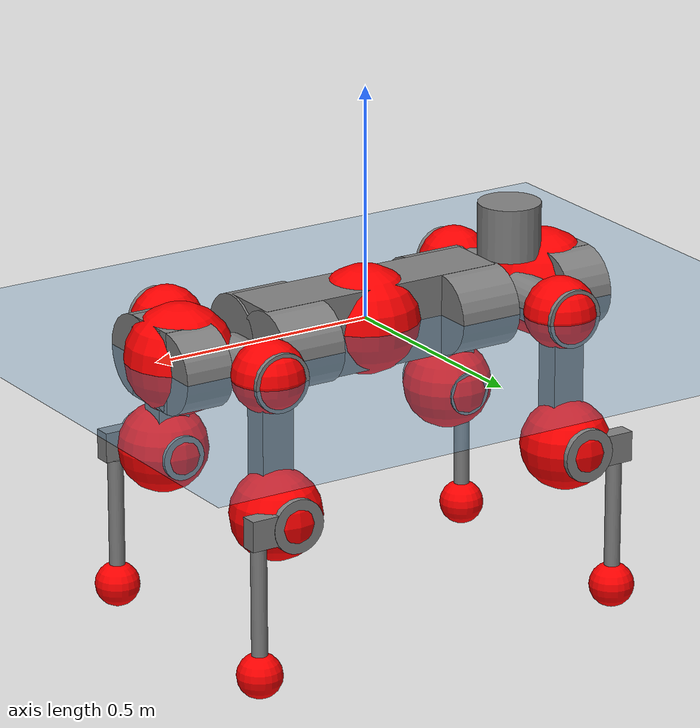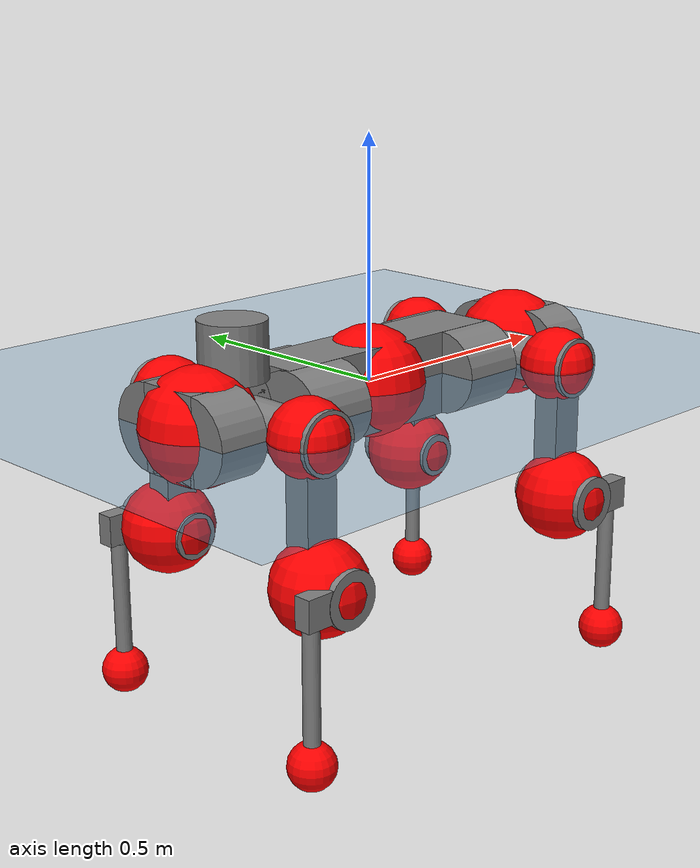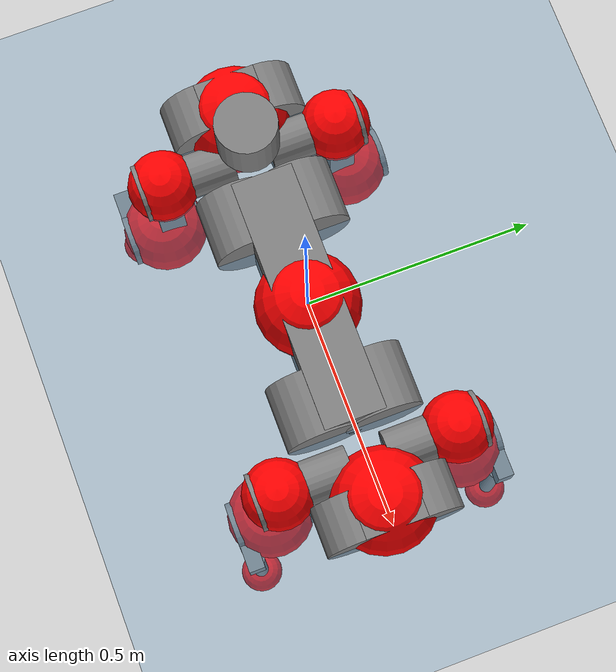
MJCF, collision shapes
<mujoco model="anymal_c">
  <compiler angle="radian" assetdir="assets" balanceinertia="true" inertiafromgeom="false"/>

  <option timestep="0.005" density="1.2" viscosity="2e-05"/>

  <size nkey="1"/>

  <visual>
    <quality shadowsize="8192"/>
    <map shadowclip="0.5"/>
  </visual>

  <default>
    <default class="/">
      <material specular="0" shininess="0.25"/>
      <geom contype="0" conaffinity="0" group="1" solref="-1000 -80"/>
      <site size="0.01 0.005 0.005" group="5"/>
      <general forcelimited="true" forcerange="-80 80" biastype="affine" gainprm="80" biasprm="0 -80 -2"/>
      <default class="anymal_c">
        <joint armature="0.01" damping="0.01" frictionloss="0.1"/>
        <default class="visual">
          <geom type="mesh" group="2"/>
          <default class="visual_zflip"/>
        </default>
        <default class="collision">
          <geom type="cylinder" group="3"/>
          <default class="foot">
            <geom size="0.03 0 0" type="sphere" condim="6" priority="1" friction="0.8 0.02 0.01" solimp="0.015 1 0.03"/>
          </default>
        </default>
      </default>
      <default class="reward_collision_sphere">
        <geom group="5" rgba="1 0 0 1"/>
      </default>
    </default>
  </default>

  <asset>
    <texture type="skybox" colorspace="auto" name="//unnamed_texture_0" builtin="gradient" rgb1="0.95 0.95 0.95" rgb2="0.95 0.95 0.95" width="100" height="600"/>
    <texture type="2d" colorspace="auto" name="texplane" builtin="checker" rgb1="0.345 0.575 0.748" rgb2="0.345 0.575 0.748" markrgb="1 1 1" width="512" height="512"/>
    <texture type="2d" colorspace="linear" name="base" file="base.png"/>
    <texture type="2d" colorspace="linear" name="top_shell" file="top_shell.png"/>
    <texture type="2d" colorspace="linear" name="bottom_shell" file="bottom_shell.png"/>
    <texture type="2d" colorspace="linear" name="remote" file="remote.png"/>
    <texture type="2d" colorspace="linear" name="hatch" file="hatch.png"/>
    <texture type="2d" colorspace="linear" name="handle" file="handle.png"/>
    <texture type="2d" colorspace="linear" name="face" file="face.png"/>
    <texture type="2d" colorspace="linear" name="battery" file="battery.png"/>
    <texture type="2d" colorspace="linear" name="lidar_cage" file="lidar_cage.png"/>
    <texture type="2d" colorspace="linear" name="depth_camera" file="depth_camera.png"/>
    <texture type="2d" colorspace="linear" name="wide_angle_camera" file="wide_angle_camera.png"/>
    <texture type="2d" colorspace="linear" name="lidar" file="lidar.png"/>
    <texture type="2d" colorspace="linear" name="drive" file="drive.png"/>
    <texture type="2d" colorspace="linear" name="hip_l" file="hip_l.png"/>
    <texture type="2d" colorspace="linear" name="shank_l" file="shank_l.png"/>
    <texture type="2d" colorspace="linear" name="foot" file="foot.png"/>
    <texture type="2d" colorspace="linear" name="thigh" file="thigh.png"/>
    <texture type="2d" colorspace="linear" name="shank_r" file="shank_r.png"/>
    <texture type="2d" colorspace="linear" name="hip_r" file="hip_r.png"/>
    <material name="MatPlane" class="/" texture="texplane" texuniform="true" texrepeat="2 2" specular="0.9" shininess="0.5"/>
    <material name="black_plastic" class="/" rgba="0.007 0.007 0.007 1"/>
    <material name="green" class="/" rgba="0.052 0.178 0.033 1"/>
    <material name="red" class="/" rgba="0.178 0.006 0.005 1"/>
    <material name="yellow" class="/" rgba="0.178 0.119 0.006 1"/>
    <material name="lwl" class="/" rgba="0.8 0.8 0.8 1"/>
    <material name="base" class="/" texture="base"/>
    <material name="top_shell" class="/" texture="top_shell"/>
    <material name="bottom_shell" class="/" texture="bottom_shell"/>
    <material name="hip_l" class="/" texture="hip_l"/>
    <material name="thigh" class="/" texture="thigh"/>
    <material name="shank_l" class="/" texture="shank_l"/>
    <material name="foot" class="/" texture="foot"/>
    <material name="hip_r" class="/" texture="hip_r"/>
    <material name="shank" class="/" texture="shank_r"/>
    <material name="hatch" class="/" texture="hatch"/>
    <material name="remote" class="/" texture="remote"/>
    <material name="handle" class="/" texture="handle"/>
    <material name="face" class="/" texture="face"/>
    <material name="depth_camera" class="/" texture="depth_camera"/>
    <material name="wide_angle_camera" class="/" texture="wide_angle_camera"/>
    <material name="battery" class="/" texture="battery"/>
    <material name="lidar_cage" class="/" texture="lidar_cage"/>
    <material name="lidar" class="/" texture="lidar"/>
    <material name="drive" class="/" texture="drive"/>
    <mesh name="base_0" class="/" file="base_0.obj"/>
    <mesh name="base_1" class="/" file="base_1.obj"/>
    <mesh name="base_2" class="/" file="base_2.obj"/>
    <mesh name="base_3" class="/" file="base_3.obj"/>
    <mesh name="base_4" class="/" file="base_4.obj"/>
    <mesh name="base_5" class="/" file="base_5.obj"/>
    <mesh name="top_shell" class="/" file="top_shell.obj"/>
    <mesh name="bottom_shell" class="/" file="bottom_shell.obj"/>
    <mesh name="remote" class="/" file="remote.obj"/>
    <mesh name="handle" class="/" file="handle.obj"/>
    <mesh name="face" class="/" file="face.obj"/>
    <mesh name="wide_angle_camera" class="/" file="wide_angle_camera.obj"/>
    <mesh name="depth_camera" class="/" file="depth_camera.obj"/>
    <mesh name="battery" class="/" file="battery.obj"/>
    <mesh name="lidar_cage" class="/" file="lidar_cage.obj"/>
    <mesh name="lidar" class="/" file="lidar.obj"/>
    <mesh name="drive" class="/" file="drive.obj"/>
    <mesh name="hip_l" class="/" file="hip_l.obj"/>
    <mesh name="thigh" class="/" file="thigh.obj"/>
    <mesh name="shank_l" class="/" file="shank_l.obj"/>
    <mesh name="foot" class="/" file="foot.obj"/>
    <mesh name="hip_r" class="/" file="hip_r.obj"/>
    <mesh name="hatch" class="/" file="hatch.obj"/>
    <mesh name="shank_r" class="/" file="shank_r.obj"/>
  </asset>

  <worldbody>
    <geom name="floor" class="/" size="100 100 0.125" type="plane" group="0" material="MatPlane"/>
    <light name="toplight_shadow" class="/" pos="0 0 5" dir="0.0990148 0.0990148 -0.990148" type="directional" ambient="0.04 0.04 0.04" diffuse="0.55 0.55 0.55" specular="0.12 0.12 0.12"/>
    <light name="toplight_fill" class="/" pos="0 0 5" dir="0.0990148 0.0990148 -0.990148" type="directional" castshadow="false" ambient="0.04 0.04 0.04" diffuse="0.3 0.3 0.3" specular="0.08 0.08 0.08"/>
    <body name="trunk" childclass="anymal_c" pos="0.00054382 -0.000171974 -0.000601283" quat="1 -0.000104736 7.67085e-05 0.000180699">
      <inertial pos="0.00103982 -0.0020195 0.0479162" quat="0.496303 0.500001 0.500766 0.502908" mass="16.8325" diaginertia="0.599472 0.400731 0.213018"/>
      <joint name="//unnamed_joint_0" type="free" armature="0" damping="0" frictionloss="0"/>
      <geom name="//unnamed_geom_1" class="visual" material="green" mesh="base_0"/>
      <geom name="//unnamed_geom_2" class="visual" material="yellow" mesh="base_1"/>
      <geom name="//unnamed_geom_3" class="visual" material="red" mesh="base_2"/>
      <geom name="//unnamed_geom_4" class="visual" material="black_plastic" mesh="base_3"/>
      <geom name="//unnamed_geom_5" class="visual" material="lwl" mesh="base_4"/>
      <geom name="//unnamed_geom_6" class="visual" material="base" mesh="base_5"/>
      <geom name="trunk_1" class="collision" size="0.280063 0.0676015 0.0869162" type="box"/>
      <geom name="trunk_2" class="collision" size="0.0869162 0.0700158" pos="0.215032 0.0640033 0" quat="0.707107 0 0.707107 0"/>
      <geom name="trunk_3" class="collision" size="0.0869162 0.0700158" pos="-0.215032 0.0640033 0" quat="0.707107 0 0.707107 0"/>
      <geom name="trunk_4" class="collision" size="0.0869162 0.0700158" pos="0.215032 -0.0640033 0" quat="0.707107 0 0.707107 0"/>
      <geom name="trunk_5" class="collision" size="0.0869162 0.0700158" pos="-0.215032 -0.0640033 0" quat="0.707107 0 0.707107 0"/>
      <geom name="//unnamed_geom_12" class="visual" material="top_shell" mesh="top_shell"/>
      <geom name="//unnamed_geom_13" class="visual" material="bottom_shell" mesh="bottom_shell"/>
      <geom name="//unnamed_geom_14" class="visual" material="remote" mesh="remote"/>
      <geom name="//unnamed_geom_15" class="visual" material="handle" mesh="handle"/>
      <geom name="//unnamed_geom_16" class="visual" pos="0.409796 0 0" quat="1 0 0 0" material="face" mesh="face"/>
      <geom name="trunk_6" class="collision" size="0.0531155 0.0676015 0.0869162" pos="0.464172 0 0" type="box"/>
      <geom name="//unnamed_geom_18" class="collision" size="0.0869162 0.0531155" pos="0.464172 0.0640033 0" quat="0.707107 0 0.707107 0"/>
      <geom name="//unnamed_geom_19" class="collision" size="0.0869162 0.0531155" pos="0.464172 -0.0640033 0" quat="0.707107 0 0.707107 0"/>
      <geom name="//unnamed_geom_20" class="visual" pos="0.456412 0 -0.0290736" quat="0.965926 0 0.258819 0" material="depth_camera" mesh="depth_camera"/>
      <geom name="//unnamed_geom_21" class="visual" pos="0.507179 0 0.0148835" material="wide_angle_camera" mesh="wide_angle_camera"/>
      <geom name="//unnamed_geom_22" class="visual_zflip" pos="-0.409796 0 0" quat="0 0 0 1" material="face" mesh="face"/>
      <geom name="trunk_7" class="collision" size="0.0531155 0.0676015 0.0869162" pos="-0.464172 0 0" quat="0 0 0 1" type="box"/>
      <geom name="//unnamed_geom_24" class="collision" size="0.0869162 0.0531155" pos="-0.464172 -0.0640033 0" quat="0 -0.707107 0 0.707107"/>
      <geom name="//unnamed_geom_25" class="collision" size="0.0869162 0.0531155" pos="-0.464172 0.0640033 0" quat="0 -0.707107 0 0.707107"/>
      <geom name="//unnamed_geom_26" class="visual" pos="-0.456412 0 -0.0290736" quat="0 -0.258819 0 0.965926" material="depth_camera" mesh="depth_camera"/>
      <geom name="//unnamed_geom_27" class="visual_zflip" pos="-0.507179 0 0.0148835" quat="0 0 0 1" material="wide_angle_camera" mesh="wide_angle_camera"/>
      <geom name="//unnamed_geom_28" class="visual" material="battery" mesh="battery"/>
      <geom name="//unnamed_geom_29" class="visual" pos="0 0.0689349 0.0288398" quat="0.683013 -0.183013 0.183013 0.683013" material="depth_camera" mesh="depth_camera"/>
      <geom name="//unnamed_geom_30" class="visual" pos="0 -0.0689349 0.0288398" quat="0.683013 0.183013 0.183013 -0.683013" material="depth_camera" mesh="depth_camera"/>
      <geom name="//unnamed_geom_31" class="visual" pos="-0.359869 0 0.0730753" quat="1 0 0 0" material="lidar_cage" mesh="lidar_cage"/>
      <geom name="trunk_8" class="collision" size="0.0676015 0.0579441" pos="-0.359869 0 0.132729"/>
      <geom name="//unnamed_geom_33" class="visual" pos="-0.359869 -2.91982e-05 0.141378" quat="0.707107 0 0 -0.707107" material="lidar" mesh="lidar"/>
      <geom name="//unnamed_geom_34" class="visual" pos="0.296497 0.095119 -1.3781e-09" quat="0.258819 0.965926 0 0" material="drive" mesh="drive"/>
      <geom name="//unnamed_geom_35" class="visual" pos="0.296497 -0.095119 1.3781e-09" quat="0.258819 -0.965926 0 0" material="drive" mesh="drive"/>
      <geom name="//unnamed_geom_36" class="visual" pos="-0.296497 0.095119 1.3781e-09" quat="0 0 0.965926 -0.258819" material="drive" mesh="drive"/>
      <geom name="//unnamed_geom_37" class="visual" pos="-0.296497 -0.095119 -1.3781e-09" quat="0 0 -0.965926 -0.258819" material="drive" mesh="drive"/>
      <geom name="//unnamed_geom_38" class="visual" pos="0.114684 0 0.0725782" quat="1 0 0 0" material="hatch" mesh="hatch"/>
      <geom name="//unnamed_geom_39" class="reward_collision_sphere" size="0.115888"/>
      <geom name="//unnamed_geom_40" class="reward_collision_sphere" size="0.115888" pos="0.444894 0 0"/>
      <geom name="//unnamed_geom_41" class="reward_collision_sphere" size="0.115888" pos="-0.444894 0 0"/>
      <site name="imu" pos="0.234041 0.00657674 0.0550623" size="0.00965736"/>
      <camera name="track" pos="0 -1.82867 0" quat="0.707107 0.707107 0 0" mode="trackcom"/>
      <camera name="ego_camera" pos="0.444894 0 -0.0397689" quat="-0.5 -0.5 0.5 0.5"/>
      <body name="LF_HIP" pos="0.296938 0.0958257 0.00105517" quat="0.258728 0.96595 3.85334e-05 -0.000363214">
        <inertial pos="0.057968 -0.0131123 -0.00872082" quat="-0.127991 0.709723 -0.135511 0.679373" mass="2.43401" diaginertia="0.00536893 0.00314618 0.0031456"/>
        <joint name="LF_HAA" pos="0 0 0" axis="0.999967 0.00183257 0.00786584" range="-0.729859 0.481194" armature="0.0107482" damping="0" frictionloss="0.097763"/>
        <geom name="//unnamed_geom_42" class="visual" pos="0 -8.10672e-05 1.33152e-05" quat="0.258819 -0.965926 0 0" material="hip_l" mesh="hip_l"/>
        <geom name="//unnamed_geom_43" class="visual" pos="0.0592203 -0.0708078 -0.0414718" quat="0.183013 -0.683013 0.683013 0.183013" material="drive" mesh="drive"/>
        <geom name="//unnamed_geom_44" class="collision" size="0.0482868 0.0676015" pos="0.0592203 -0.0109352 -0.0068651" quat="-0.353553 -0.612372 0.612372 -0.353553"/>
        <body name="LF_THIGH" pos="0.0596616 -0.0653667 -0.041373" quat="0.183403 -0.6828 0.68302 0.183389">
          <inertial pos="0.0298721 0.000165892 -0.242261" quat="0.993121 -0.00227413 -0.0784578 0.0868896" mass="2.7822" diaginertia="0.0280093 0.0192162 0.00409606"/>
          <joint name="LF_HFE" pos="0 0 0" axis="0.999926 0.0118167 0.00274398" range="-3.12492 3.13212" armature="0.00963458" damping="0.0148713" frictionloss="0.0879082"/>
          <geom name="//unnamed_geom_45" class="visual" pos="0.00147867 2.33003e-06 0" quat="0.707107 0 0 -0.707107" material="thigh" mesh="thigh"/>
          <geom name="//unnamed_geom_46" class="collision" size="0.0627728 0.0386294" pos="0.0395461 0 0" quat="0.5 0.5 -0.5 -0.5"/>
          <geom name="//unnamed_geom_47" class="collision" size="0.0362151 0.0289721 0.136472" pos="0.0296596 0 -0.140497" quat="0.707107 0 0 -0.707107" type="box"/>
          <geom name="//unnamed_geom_48" class="visual" pos="0.0991618 0 -0.283353" quat="1 0 0 0" material="drive" mesh="drive"/>
          <geom name="//unnamed_geom_49" class="collision" size="0.0482868 0.0676015" pos="0.0299562 0 -0.283353" quat="0.707107 0 0.707107 0"/>
          <geom name="//unnamed_geom_50" class="reward_collision_sphere" size="0.0772589" pos="0.0247163 0 0"/>
          <body name="LF_SHANK" pos="0.100566 -0.00188905 -0.285793" quat="1 0.000602895 8.77732e-05 -0.000413435">
            <inertial pos="0.00591729 -0.0560066 -0.0795763" quat="0.992558 -0.118658 0.00126666 -0.0273259" mass="0.530782" diaginertia="0.00964308 0.00587921 0.0010993"/>
            <joint name="LF_KFE" pos="0 0 0" axis="0.999999 -0.000609585 -0.0012527" range="-3.14969 3.11966" armature="0.00941555" damping="0" frictionloss="0.0974611"/>
            <geom name="//unnamed_geom_51" class="visual" pos="0.000482161 0.00257091 0" quat="0.707107 0 0 -0.707107" material="shank_l" mesh="shank_l"/>
            <geom name="LF_kfe_act" class="collision" size="0.0579441 0.0193147" pos="0.019773 0 0" quat="0.5 0.5 -0.5 -0.5"/>
            <geom name="//unnamed_geom_53" class="collision" size="0.0555288 0.0325936 0.018349" pos="0.019773 -0.0525732 0" quat="0.5 0.5 -0.5 -0.5" type="box"/>
            <geom name="//unnamed_geom_54" class="visual" pos="0.0129018 -0.0795871 -0.336017" quat="0.382683 0 0 -0.92388" material="foot" mesh="foot"/>
            <geom name="LF_calf" class="collision" size="0.0169004 0.136412" pos="0.0129019 -0.0804156 -0.168009" quat="0.707107 0 0 -0.707107"/>
            <geom name="LF_foot" class="foot" size="0.0322044" pos="0.0129019 -0.0804156 -0.313647" quat="0.707107 0 0 -0.707107"/>
            <geom name="//unnamed_geom_57" class="reward_collision_sphere" size="0.0965736" pos="-0.0494326 0 0"/>
            <geom name="//unnamed_geom_58" class="reward_collision_sphere" size="0.0482868" pos="0.0129019 -0.0804156 -0.313647"/>
            <site name="LF_foot" class="foot" pos="0.0129019 -0.0804156 -0.313647" quat="0.707107 0 0 -0.707107" size="0.00965736"/>
          </body>
        </body>
      </body>
      <body name="RF_HIP" pos="0.297 -0.0948156 0.00119693" quat="0.258819 -0.965926 -2.75872e-07 1.41895e-05">
        <inertial pos="0.0579025 0.0137902 -0.00775916" quat="0.135523 0.680224 0.127588 0.708978" mass="2.5325" diaginertia="0.00559897 0.00314022 0.00319476"/>
        <joint name="RF_HAA" pos="0 0 0" axis="0.999994 0.00276501 -0.00194211" range="-0.532826 0.72249" armature="0.00882471" damping="0.0107855" frictionloss="0.0875833"/>
        <geom name="//unnamed_geom_59" class="visual" pos="0 8.10666e-05 1.33152e-05" quat="0.258819 0.965926 0 0" material="hip_r" mesh="hip_r"/>
        <geom name="//unnamed_geom_60" class="visual" pos="0.0592203 0.0708078 -0.0414718" quat="0.183013 0.683013 0.683013 -0.183013" material="drive" mesh="drive"/>
        <geom name="//unnamed_geom_61" class="collision" size="0.0482868 0.0676015" pos="0.0592203 0.0109352 -0.0068651" quat="-0.353553 0.612372 0.612372 0.353553"/>
        <body name="RF_THIGH" pos="0.0604376 0.0684843 -0.0415423" quat="0.182916 0.683008 0.683044 -0.183011">
          <inertial pos="0.0306395 -4.38786e-05 -0.244562" quat="0.992326 0.00184524 -0.0853027 0.0894965" mass="2.65432" diaginertia="0.0283706 0.0188891 0.00397289"/>
          <joint name="RF_HFE" pos="0 0 0" axis="0.999993 0.00259263 0.00265409" stiffness="0.00523623" range="-3.09523 3.14826" armature="0.00981384" damping="0.00172667" frictionloss="0.108685"/>
          <geom name="//unnamed_geom_62" class="visual" pos="0.00147867 2.33003e-06 0" quat="0.707107 0 0 -0.707107" material="thigh" mesh="thigh"/>
          <geom name="//unnamed_geom_63" class="collision" size="0.0627728 0.0386294" pos="0.0395461 0 0" quat="0.5 0.5 0.5 0.5"/>
          <geom name="//unnamed_geom_64" class="collision" size="0.0362151 0.0289721 0.136472" pos="0.0296596 0 -0.140497" quat="0.707107 0 0 0.707107" type="box"/>
          <geom name="//unnamed_geom_65" class="visual" pos="0.0991618 0 -0.283353" quat="1 0 0 0" material="drive" mesh="drive"/>
          <geom name="//unnamed_geom_66" class="collision" size="0.0482868 0.0676015" pos="0.0299562 0 -0.283353" quat="0.707107 0 0.707107 0"/>
          <geom name="//unnamed_geom_67" class="reward_collision_sphere" size="0.0772589" pos="0.0247163 0 0"/>
          <body name="RF_SHANK" pos="0.10037 -0.00174273 -0.284349" quat="1 0.000131631 0.000148234 9.61763e-05">
            <inertial pos="0.00582303 0.0556596 -0.0778419" quat="0.992991 0.115405 -0.000569525 0.0255052" mass="0.529835" diaginertia="0.00932565 0.00581114 0.00109351"/>
            <joint name="RF_KFE" pos="0 0 0" axis="0.999999 -0.000828336 0.00142008" range="-3.12814 3.13879" armature="0.010154" damping="0.0103218" frictionloss="0.085628"/>
            <geom name="//unnamed_geom_68" class="visual" pos="0.000482158 -0.0025709 0" quat="0.707107 0 0 0.707107" material="shank" mesh="shank_r"/>
            <geom name="RF_kfe_act" class="collision" size="0.0579441 0.0193147" pos="0.019773 0 0" quat="0.5 0.5 0.5 0.5"/>
            <geom name="//unnamed_geom_70" class="collision" size="0.0555288 0.0325936 0.018349" pos="0.019773 0.0525732 0" quat="0.5 0.5 0.5 0.5" type="box"/>
            <geom name="//unnamed_geom_71" class="visual" pos="0.012902 0.0795871 -0.336017" quat="0.382683 0 0 0.92388" material="foot" mesh="foot"/>
            <geom name="RF_calf" class="collision" size="0.0169004 0.136412" pos="0.0129019 0.0804156 -0.168009" quat="0.707107 0 0 0.707107"/>
            <geom name="RF_foot" class="foot" size="0.0270536" pos="0.0129019 0.0804156 -0.313647" quat="0.707107 0 0 0.707107"/>
            <geom name="//unnamed_geom_74" class="reward_collision_sphere" size="0.0965736" pos="-0.0494326 0 0"/>
            <geom name="//unnamed_geom_75" class="reward_collision_sphere" size="0.0482868" pos="0.0129019 0.0804156 -0.313647"/>
            <site name="RF_foot" class="foot" pos="0.0129019 0.0804156 -0.313647" quat="0.707107 0 0 0.707107" size="0.00965736"/>
          </body>
        </body>
      </body>
      <body name="LH_HIP" pos="-0.29817 0.0950869 -2.12334e-05" quat="-6.28827e-05 0.00026707 0.965896 -0.258929">
        <inertial pos="0.0553773 0.0156981 -0.00789505" quat="0.135381 0.679182 0.12793 0.709942" mass="2.48292" diaginertia="0.0054921 0.00316896 0.00306105"/>
        <joint name="LH_HAA" pos="0 0 0" axis="0.999992 0.00339861 -0.00201824" stiffness="0.00276318" range="-0.513996 0.673315" armature="0.00863492" damping="0.0124464" frictionloss="0.095525"/>
        <geom name="//unnamed_geom_76" class="visual" pos="0 8.10666e-05 1.33152e-05" quat="-0.258819 -0.965926 0 0" material="hip_r" mesh="hip_r"/>
        <geom name="//unnamed_geom_77" class="visual" pos="0.0592203 0.0708078 -0.0414718" quat="0.183013 0.683013 0.683013 -0.183013" material="drive" mesh="drive"/>
        <geom name="//unnamed_geom_78" class="collision" size="0.0482868 0.0676015" pos="0.0592203 0.0109352 -0.0068651" quat="-0.353553 0.612372 0.612372 0.353553"/>
        <body name="LH_THIGH" pos="0.0579825 0.0641681 -0.0409222" quat="0.182911 0.683005 0.683064 -0.182953">
          <inertial pos="0.0305513 0.00120582 -0.244119" quat="0.992931 -0.00604399 -0.0813832 0.086182" mass="2.76072" diaginertia="0.0286217 0.0190927 0.00401369"/>
          <joint name="LH_HFE" pos="0 0 0" axis="0.999963 0.00528245 0.00673214" range="-3.14256 3.13035" armature="0.00991496" damping="0.0124147" frictionloss="0.0916093"/>
          <geom name="//unnamed_geom_79" class="visual" pos="0.00147867 2.33003e-06 0" quat="0.707107 0 0 -0.707107" material="thigh" mesh="thigh"/>
          <geom name="//unnamed_geom_80" class="collision" size="0.0627728 0.0386294" pos="0.0395461 0 0" quat="0.5 0.5 -0.5 -0.5"/>
          <geom name="//unnamed_geom_81" class="collision" size="0.0362151 0.0289721 0.136472" pos="0.0296596 0 -0.140497" quat="0.707107 0 0 -0.707107" type="box"/>
          <geom name="//unnamed_geom_82" class="visual" pos="0.0991618 0 -0.283353" quat="1 0 0 0" material="drive" mesh="drive"/>
          <geom name="//unnamed_geom_83" class="collision" size="0.0482868 0.0676015" pos="0.0299562 0 -0.283353" quat="0.707107 0 0.707107 0"/>
          <geom name="//unnamed_geom_84" class="reward_collision_sphere" size="0.0772589" pos="0.0247163 0 0"/>
          <body name="LH_SHANK" pos="0.0991839 -3.19003e-05 -0.283078" quat="1 -8.20307e-05 0.000204023 -0.00023828">
            <inertial pos="0.00545318 0.0558823 -0.0799372" quat="0.991557 0.12762 -0.00396311 0.0226262" mass="0.529965" diaginertia="0.00964858 0.00592397 0.00105348"/>
            <joint name="LH_KFE" pos="0 0 0" axis="0.999949 -0.00964624 -0.00298671" range="-3.13541 3.14237" armature="0.00917153" damping="0.00993291" frictionloss="0.0981627"/>
            <geom name="//unnamed_geom_85" class="visual" pos="0.000482158 -0.0025709 0" quat="-0.707107 0 0 -0.707107" material="shank" mesh="shank_r"/>
            <geom name="LH_kfe_act" class="collision" size="0.0579441 0.0193147" pos="0.019773 0 0" quat="0.5 0.5 -0.5 -0.5"/>
            <geom name="//unnamed_geom_87" class="collision" size="0.0555288 0.0325936 0.018349" pos="0.019773 0.0525732 0" quat="0.5 0.5 -0.5 -0.5" type="box"/>
            <geom name="//unnamed_geom_88" class="visual" pos="0.012902 0.0795871 -0.336017" quat="-0.382683 0 0 -0.92388" material="foot" mesh="foot"/>
            <geom name="LH_calf" class="collision" size="0.0169004 0.136412" pos="0.0129019 0.0804156 -0.168009" quat="0.707107 0 0 -0.707107"/>
            <geom name="LH_foot" class="foot" size="0.0341662" pos="0.0129019 0.0804156 -0.313647" quat="0.707107 0 0 -0.707107"/>
            <geom name="//unnamed_geom_91" class="reward_collision_sphere" size="0.0965736" pos="-0.0494326 0 0"/>
            <geom name="//unnamed_geom_92" class="reward_collision_sphere" size="0.0482868" pos="0.0129019 0.0804156 -0.313647"/>
            <site name="LH_foot" class="foot" pos="0.0129019 0.0804156 -0.313647" quat="0.707107 0 0 -0.707107" size="0.00965736"/>
          </body>
        </body>
      </body>
      <body name="RH_HIP" pos="-0.296436 -0.0977726 0.00102557" quat="0.000595309 -0.000105484 -0.965866 -0.25904">
        <inertial pos="0.0539498 -0.0137543 -0.0068267" quat="-0.130484 0.707265 -0.137356 0.68109" mass="2.52523" diaginertia="0.00556055 0.00316012 0.00312727"/>
        <joint name="RH_HAA" pos="0 0 0" axis="1 0.00019594 7.96058e-05" range="-0.75543 0.540317" armature="0.00946347" damping="0.00732097" frictionloss="0.0971639"/>
        <geom name="//unnamed_geom_93" class="visual" pos="0 -8.10672e-05 1.33152e-05" quat="-0.258819 0.965926 0 0" material="hip_l" mesh="hip_l"/>
        <geom name="//unnamed_geom_94" class="visual" pos="0.0592203 -0.0708078 -0.0414718" quat="-0.183013 0.683013 -0.683013 -0.183013" material="drive" mesh="drive"/>
        <geom name="//unnamed_geom_95" class="collision" size="0.0482868 0.0676015" pos="0.0592203 -0.0109352 -0.0068651" quat="0.353553 0.612372 -0.612372 0.353553"/>
        <body name="RH_THIGH" pos="0.0596899 -0.0661205 -0.0404743" quat="-0.182939 0.6831 -0.682936 -0.183046">
          <inertial pos="0.0314915 0.0006869 -0.24415" quat="0.993148 -0.00568889 -0.08075 0.0842907" mass="2.6031" diaginertia="0.0271301 0.0185381 0.00391289"/>
          <joint name="RH_HFE" pos="0 0 0" axis="0.999987 -0.00279569 -0.00421004" range="-3.13139 3.1437" armature="0.010118" damping="0.0127872" frictionloss="0.0965717"/>
          <geom name="//unnamed_geom_96" class="visual" pos="0.00147867 2.33003e-06 0" quat="0.707107 0 0 -0.707107" material="thigh" mesh="thigh"/>
          <geom name="//unnamed_geom_97" class="collision" size="0.0627728 0.0386294" pos="0.0395461 0 0" quat="0.5 0.5 0.5 0.5"/>
          <geom name="//unnamed_geom_98" class="collision" size="0.0362151 0.0289721 0.136472" pos="0.0296596 0 -0.140497" quat="0.707107 0 0 0.707107" type="box"/>
          <geom name="//unnamed_geom_99" class="visual" pos="0.0991618 0 -0.283353" quat="1 0 0 0" material="drive" mesh="drive"/>
          <geom name="//unnamed_geom_100" class="collision" size="0.0482868 0.0676015" pos="0.0299562 0 -0.283353" quat="0.707107 0 0.707107 0"/>
          <geom name="//unnamed_geom_101" class="reward_collision_sphere" size="0.0772589" pos="0.0247163 0 0"/>
          <body name="RH_SHANK" pos="0.0972588 0.000977945 -0.284126" quat="1 2.33491e-05 0.000264672 -0.00023102">
            <inertial pos="0.00648755 -0.0559748 -0.0797943" quat="0.992832 -0.114924 -0.00384642 -0.032595" mass="0.536238" diaginertia="0.00969514 0.00605124 0.00109717"/>
            <joint name="RH_KFE" pos="0 0 0" axis="0.999999 -0.00110697 0.000363519" range="-3.13386 3.15627" armature="0.0085594" damping="0.00256045" frictionloss="0.0961587"/>
            <geom name="//unnamed_geom_102" class="visual" pos="0.000482161 0.00257091 0" quat="0.707107 0 0 -0.707107" material="shank_l" mesh="shank_l"/>
            <geom name="RH_kfe_act" class="collision" size="0.0579441 0.0193147" pos="0.019773 0 0" quat="0.5 0.5 0.5 0.5"/>
            <geom name="//unnamed_geom_104" class="collision" size="0.0555288 0.0325936 0.018349" pos="0.019773 -0.0525732 0" quat="0.5 0.5 0.5 0.5" type="box"/>
            <geom name="//unnamed_geom_105" class="visual" pos="0.0129018 -0.0795871 -0.336017" quat="0.382683 0 0 -0.92388" material="foot" mesh="foot"/>
            <geom name="RH_calf" class="collision" size="0.0169004 0.136412" pos="0.0129019 -0.0804156 -0.168009" quat="0.707107 0 0 0.707107"/>
            <geom name="RH_foot" class="foot" size="0.0251126" pos="0.0129019 -0.0804156 -0.313647" quat="0.707107 0 0 0.707107"/>
            <geom name="//unnamed_geom_108" class="reward_collision_sphere" size="0.0965736" pos="-0.0494326 0 0"/>
            <geom name="//unnamed_geom_109" class="reward_collision_sphere" size="0.0482868" pos="0.0129019 -0.0804156 -0.313647"/>
            <site name="RH_foot" class="foot" pos="0.0129019 -0.0804156 -0.313647" quat="0.707107 0 0 0.707107" size="0.00965736"/>
          </body>
        </body>
      </body>
    </body>
  </worldbody>

  <contact>
    <pair class="/" geom1="floor" geom2="LF_foot" name="//unnamed_contact_0"/>
    <pair class="/" geom1="floor" geom2="RF_foot" name="//unnamed_contact_1"/>
    <pair class="/" geom1="floor" geom2="LH_foot" name="//unnamed_contact_2"/>
    <pair class="/" geom1="floor" geom2="RH_foot" name="//unnamed_contact_3"/>
  </contact>

  <actuator>
    <general name="LF_HAA" class="/" joint="LF_HAA" forcerange="-77.581 77.581" gainprm="83.3371" biasprm="0 -83.3371 -1.90068"/>
    <general name="LF_HFE" class="/" joint="LF_HFE" forcerange="-78.4578 78.4578" gainprm="83.3371" biasprm="0 -83.3371 -1.90068"/>
    <general name="LF_KFE" class="/" joint="LF_KFE" forcerange="-78.0832 78.0832" gainprm="83.3371" biasprm="0 -83.3371 -1.90068"/>
    <general name="RF_HAA" class="/" joint="RF_HAA" forcerange="-77.7349 77.7349" gainprm="83.3371" biasprm="0 -83.3371 -1.90068"/>
    <general name="RF_HFE" class="/" joint="RF_HFE" forcerange="-76.9559 76.9559" gainprm="83.3371" biasprm="0 -83.3371 -1.90068"/>
    <general name="RF_KFE" class="/" joint="RF_KFE" forcerange="-72.9228 72.9228" gainprm="83.3371" biasprm="0 -83.3371 -1.90068"/>
    <general name="LH_HAA" class="/" joint="LH_HAA" forcerange="-77.5627 77.5627" gainprm="83.3371" biasprm="0 -83.3371 -1.90068"/>
    <general name="LH_HFE" class="/" joint="LH_HFE" forcerange="-73.1032 73.1032" gainprm="83.3371" biasprm="0 -83.3371 -1.90068"/>
    <general name="LH_KFE" class="/" joint="LH_KFE" forcerange="-77.7018 77.7018" gainprm="83.3371" biasprm="0 -83.3371 -1.90068"/>
    <general name="RH_HAA" class="/" joint="RH_HAA" forcerange="-80.3468 80.3468" gainprm="83.3371" biasprm="0 -83.3371 -1.90068"/>
    <general name="RH_HFE" class="/" joint="RH_HFE" forcerange="-71.3714 71.3714" gainprm="83.3371" biasprm="0 -83.3371 -1.90068"/>
    <general name="RH_KFE" class="/" joint="RH_KFE" forcerange="-81.7533 81.7533" gainprm="83.3371" biasprm="0 -83.3371 -1.90068"/>
  </actuator>

  <sensor>
    <gyro site="imu" name="imu_angular_velocity"/>
    <velocimeter site="imu" name="imu_linear_velocity"/>
    <framelinvel objtype="site" objname="LF_foot" name="LF_foot_global_linear_velocity"/>
    <framelinvel objtype="site" objname="RF_foot" name="RF_foot_global_linear_velocity"/>
    <framelinvel objtype="site" objname="LH_foot" name="LH_foot_global_linear_velocity"/>
    <framelinvel objtype="site" objname="RH_foot" name="RH_foot_global_linear_velocity"/>
  </sensor>

  <keyframe>
    <key name="home" qpos="0 0 0.55 1 0 0 0 0 0.4 -0.8 0 -0.4 0.8 0 -0.4 0.8 0 0.4 -0.8"/>
  </keyframe>
</mujoco>
